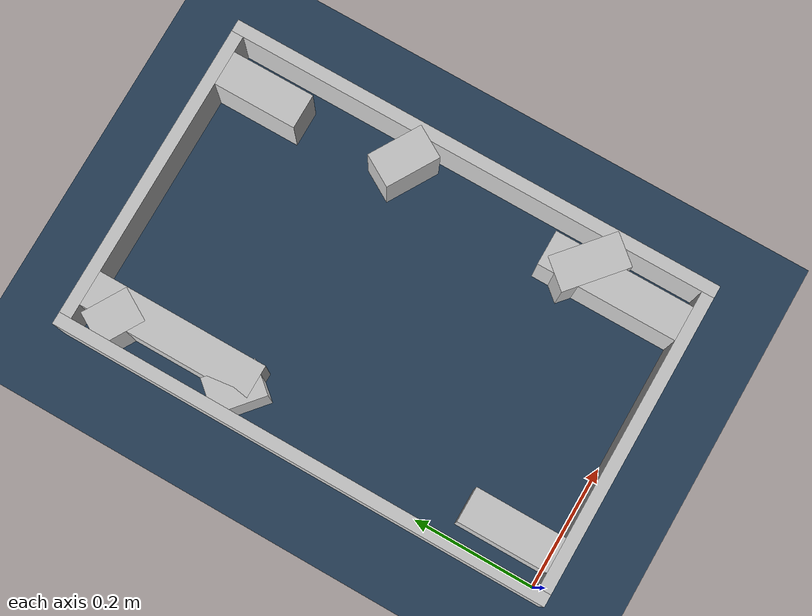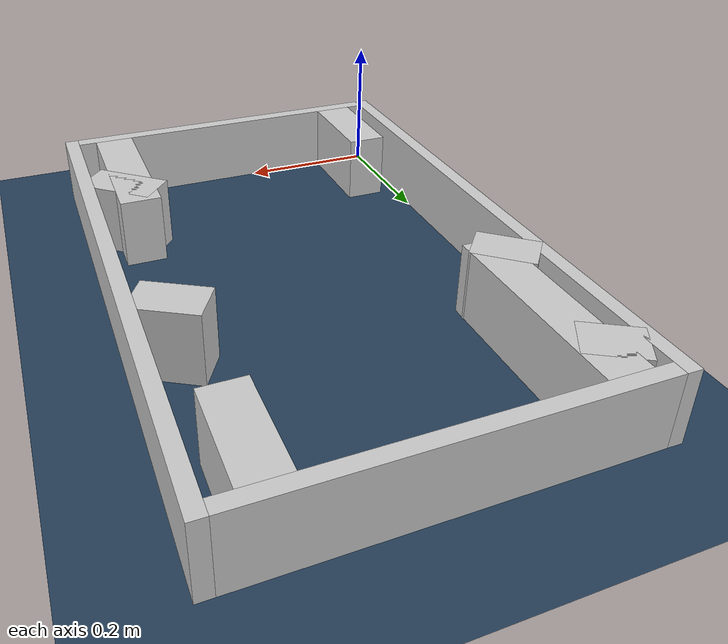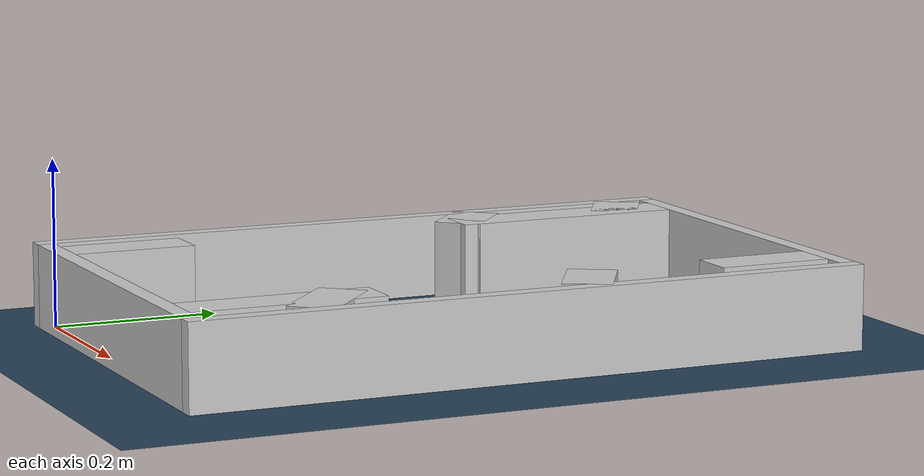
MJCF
<?xml version="1.0" ?>
<mujoco model="generated_real_template">
  <compiler angle="degree"/>
  <option timestep="0.002" integrator="implicitfast" iterations="100" cone="elliptic"/>
  <default>
    <geom density="1"/>
  </default>
  <asset>
    <texture builtin="gradient" height="3072" rgb1="0.3 0.5 0.7" rgb2="0 0 0" type="skybox" width="512"/>
    <texture builtin="checker" height="300" mark="edge" markrgb="0.8 0.8 0.8" name="groundplane" rgb1="0.2 0.3 0.4" rgb2="0.1 0.2 0.3" type="2d" width="300"/>
    <material name="groundplane" reflectance="0.2" texrepeat="5 5" texture="groundplane" texuniform="true"/>
  </asset>
  <worldbody>
    <light dir="0 0 -1" directional="true" pos="0 0 1.5"/>
    <geom name="floor" type="plane" condim="4" friction="0.5 0.005 0.001" material="groundplane" size="0 0 0.05"/>
    <body name="walls">
      <geom name="wall_boundary_left" type="box" condim="4" friction="1.0 0.005 0.0001" rgba="0.8 0.8 0.8 1" pos="-0.010000 0.387500 0.050000" euler="0 0 0.000000" size="0.010000 0.407500 0.050000"/>
      <geom name="wall_boundary_right" type="box" condim="4" friction="1.0 0.005 0.0001" rgba="0.8 0.8 0.8 1" pos="0.500000 0.387500 0.050000" euler="0 0 0.000000" size="0.010000 0.407500 0.050000"/>
      <geom name="wall_boundary_bottom" type="box" condim="4" friction="1.0 0.005 0.0001" rgba="0.8 0.8 0.8 1" pos="0.245000 -0.010000 0.050000" euler="0 0 0.000000" size="0.245000 0.010000 0.050000"/>
      <geom name="wall_boundary_top" type="box" condim="4" friction="1.0 0.005 0.0001" rgba="0.8 0.8 0.8 1" pos="0.245000 0.785000 0.050000" euler="0 0 0.000000" size="0.245000 0.010000 0.050000"/>
      <geom name="wall_inner_1_1" type="box" condim="4" friction="1.0 0.005 0.0001" rgba="0.8 0.8 0.8 1" pos="0.435353 0.113703 0.050000" euler="0 0 90.000000" size="0.113703 0.028500 0.050000"/>
      <geom name="wall_inner_1_2" type="box" condim="4" friction="1.0 0.005 0.0001" rgba="0.8 0.8 0.8 1" pos="0.435353 0.707093 0.050000" euler="0 0 90.000000" size="0.067907 0.028500 0.050000"/>
      <geom name="wall_inner_2_1" type="box" condim="4" friction="1.0 0.005 0.0001" rgba="0.8 0.8 0.8 1" pos="0.052186 0.072948 0.050000" euler="0 0 90.000000" size="0.072948 0.028500 0.050000"/>
      <geom name="wall_inner_2_2" type="box" condim="4" friction="1.0 0.005 0.0001" rgba="0.8 0.8 0.8 1" pos="0.052186 0.634997 0.050000" euler="0 0 90.000000" size="0.140003 0.028500 0.050000"/>
      <geom name="wall_inner_3_1" type="box" condim="4" friction="1.0 0.005 0.0001" rgba="0.8 0.8 0.8 1" pos="0.031918 0.519233 0.050000" euler="0 0 -40.618413" size="0.042050 0.028500 0.050000"/>
      <geom name="wall_inner_3_2" type="box" condim="4" friction="1.0 0.005 0.0001" rgba="0.8 0.8 0.8 1" pos="0.447973 0.162400 0.050000" euler="0 0 -40.618413" size="0.055367 0.028500 0.050000"/>
      <geom name="wall_inner_4_1" type="box" condim="4" friction="1.0 0.005 0.0001" rgba="0.8 0.8 0.8 1" pos="0.450767 0.476616 0.050000" euler="0 0 149.386327" size="0.045587 0.028500 0.050000"/>
      <geom name="wall_inner_4_2" type="box" condim="4" friction="1.0 0.005 0.0001" rgba="0.8 0.8 0.8 1" pos="0.032531 0.724095 0.050000" euler="0 0 149.386327" size="0.037799 0.028500 0.050000"/>
    </body>
  </worldbody>
</mujoco>
